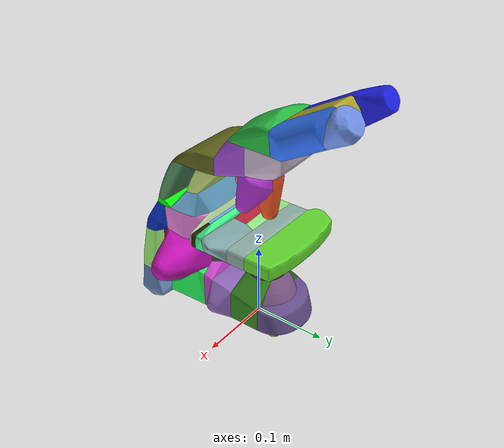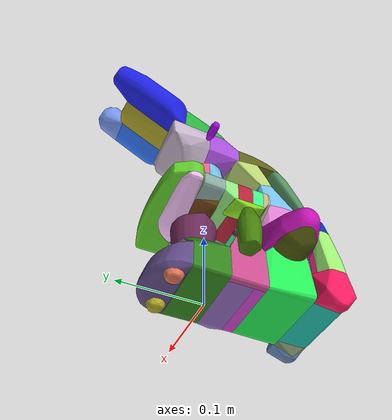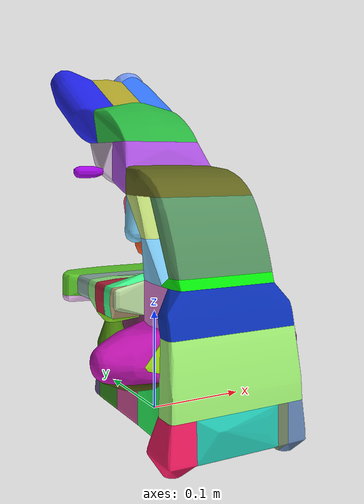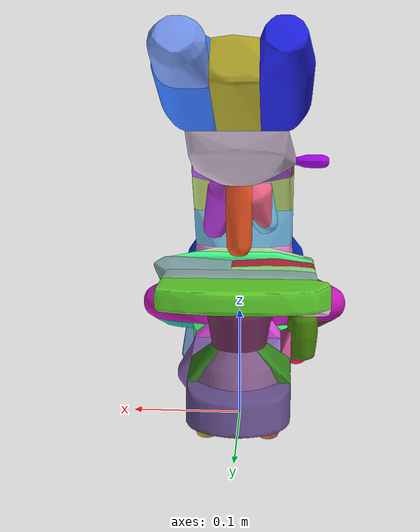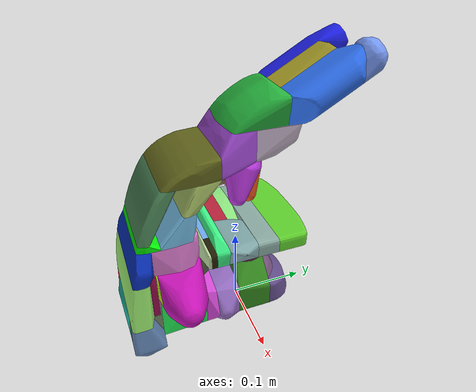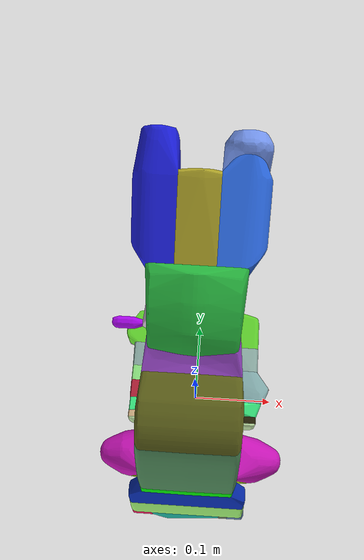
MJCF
<?xml version="1.0" ?>
<mujoco model="f81d863bec684b00a9b1ba4c2d844001">
  <asset>
    <texture type="2d" name="Scene_-_Root" file="Scene_-_Root.png"/>
    <material name="Scene_-_Root" texture="Scene_-_Root" specular="0.4000000000000001" shininess="0.001"/>
    <mesh file="f81d863bec684b00a9b1ba4c2d844001/f81d863bec684b00a9b1ba4c2d844001.obj" scale="0.006735388404175892 0.006735388404175892 0.006735388404175892"/>
    <mesh file="f81d863bec684b00a9b1ba4c2d844001/f81d863bec684b00a9b1ba4c2d844001_collision_0.obj" scale="0.006735388404175892 0.006735388404175892 0.006735388404175892"/>
    <mesh file="f81d863bec684b00a9b1ba4c2d844001/f81d863bec684b00a9b1ba4c2d844001_collision_1.obj" scale="0.006735388404175892 0.006735388404175892 0.006735388404175892"/>
    <mesh file="f81d863bec684b00a9b1ba4c2d844001/f81d863bec684b00a9b1ba4c2d844001_collision_2.obj" scale="0.006735388404175892 0.006735388404175892 0.006735388404175892"/>
    <mesh file="f81d863bec684b00a9b1ba4c2d844001/f81d863bec684b00a9b1ba4c2d844001_collision_3.obj" scale="0.006735388404175892 0.006735388404175892 0.006735388404175892"/>
    <mesh file="f81d863bec684b00a9b1ba4c2d844001/f81d863bec684b00a9b1ba4c2d844001_collision_4.obj" scale="0.006735388404175892 0.006735388404175892 0.006735388404175892"/>
    <mesh file="f81d863bec684b00a9b1ba4c2d844001/f81d863bec684b00a9b1ba4c2d844001_collision_5.obj" scale="0.006735388404175892 0.006735388404175892 0.006735388404175892"/>
    <mesh file="f81d863bec684b00a9b1ba4c2d844001/f81d863bec684b00a9b1ba4c2d844001_collision_6.obj" scale="0.006735388404175892 0.006735388404175892 0.006735388404175892"/>
    <mesh file="f81d863bec684b00a9b1ba4c2d844001/f81d863bec684b00a9b1ba4c2d844001_collision_7.obj" scale="0.006735388404175892 0.006735388404175892 0.006735388404175892"/>
    <mesh file="f81d863bec684b00a9b1ba4c2d844001/f81d863bec684b00a9b1ba4c2d844001_collision_8.obj" scale="0.006735388404175892 0.006735388404175892 0.006735388404175892"/>
    <mesh file="f81d863bec684b00a9b1ba4c2d844001/f81d863bec684b00a9b1ba4c2d844001_collision_9.obj" scale="0.006735388404175892 0.006735388404175892 0.006735388404175892"/>
    <mesh file="f81d863bec684b00a9b1ba4c2d844001/f81d863bec684b00a9b1ba4c2d844001_collision_10.obj" scale="0.006735388404175892 0.006735388404175892 0.006735388404175892"/>
    <mesh file="f81d863bec684b00a9b1ba4c2d844001/f81d863bec684b00a9b1ba4c2d844001_collision_11.obj" scale="0.006735388404175892 0.006735388404175892 0.006735388404175892"/>
    <mesh file="f81d863bec684b00a9b1ba4c2d844001/f81d863bec684b00a9b1ba4c2d844001_collision_12.obj" scale="0.006735388404175892 0.006735388404175892 0.006735388404175892"/>
    <mesh file="f81d863bec684b00a9b1ba4c2d844001/f81d863bec684b00a9b1ba4c2d844001_collision_13.obj" scale="0.006735388404175892 0.006735388404175892 0.006735388404175892"/>
    <mesh file="f81d863bec684b00a9b1ba4c2d844001/f81d863bec684b00a9b1ba4c2d844001_collision_14.obj" scale="0.006735388404175892 0.006735388404175892 0.006735388404175892"/>
    <mesh file="f81d863bec684b00a9b1ba4c2d844001/f81d863bec684b00a9b1ba4c2d844001_collision_15.obj" scale="0.006735388404175892 0.006735388404175892 0.006735388404175892"/>
    <mesh file="f81d863bec684b00a9b1ba4c2d844001/f81d863bec684b00a9b1ba4c2d844001_collision_16.obj" scale="0.006735388404175892 0.006735388404175892 0.006735388404175892"/>
    <mesh file="f81d863bec684b00a9b1ba4c2d844001/f81d863bec684b00a9b1ba4c2d844001_collision_17.obj" scale="0.006735388404175892 0.006735388404175892 0.006735388404175892"/>
    <mesh file="f81d863bec684b00a9b1ba4c2d844001/f81d863bec684b00a9b1ba4c2d844001_collision_18.obj" scale="0.006735388404175892 0.006735388404175892 0.006735388404175892"/>
    <mesh file="f81d863bec684b00a9b1ba4c2d844001/f81d863bec684b00a9b1ba4c2d844001_collision_19.obj" scale="0.006735388404175892 0.006735388404175892 0.006735388404175892"/>
    <mesh file="f81d863bec684b00a9b1ba4c2d844001/f81d863bec684b00a9b1ba4c2d844001_collision_20.obj" scale="0.006735388404175892 0.006735388404175892 0.006735388404175892"/>
    <mesh file="f81d863bec684b00a9b1ba4c2d844001/f81d863bec684b00a9b1ba4c2d844001_collision_21.obj" scale="0.006735388404175892 0.006735388404175892 0.006735388404175892"/>
    <mesh file="f81d863bec684b00a9b1ba4c2d844001/f81d863bec684b00a9b1ba4c2d844001_collision_22.obj" scale="0.006735388404175892 0.006735388404175892 0.006735388404175892"/>
    <mesh file="f81d863bec684b00a9b1ba4c2d844001/f81d863bec684b00a9b1ba4c2d844001_collision_23.obj" scale="0.006735388404175892 0.006735388404175892 0.006735388404175892"/>
    <mesh file="f81d863bec684b00a9b1ba4c2d844001/f81d863bec684b00a9b1ba4c2d844001_collision_24.obj" scale="0.006735388404175892 0.006735388404175892 0.006735388404175892"/>
    <mesh file="f81d863bec684b00a9b1ba4c2d844001/f81d863bec684b00a9b1ba4c2d844001_collision_25.obj" scale="0.006735388404175892 0.006735388404175892 0.006735388404175892"/>
    <mesh file="f81d863bec684b00a9b1ba4c2d844001/f81d863bec684b00a9b1ba4c2d844001_collision_26.obj" scale="0.006735388404175892 0.006735388404175892 0.006735388404175892"/>
    <mesh file="f81d863bec684b00a9b1ba4c2d844001/f81d863bec684b00a9b1ba4c2d844001_collision_27.obj" scale="0.006735388404175892 0.006735388404175892 0.006735388404175892"/>
    <mesh file="f81d863bec684b00a9b1ba4c2d844001/f81d863bec684b00a9b1ba4c2d844001_collision_28.obj" scale="0.006735388404175892 0.006735388404175892 0.006735388404175892"/>
    <mesh file="f81d863bec684b00a9b1ba4c2d844001/f81d863bec684b00a9b1ba4c2d844001_collision_29.obj" scale="0.006735388404175892 0.006735388404175892 0.006735388404175892"/>
    <mesh file="f81d863bec684b00a9b1ba4c2d844001/f81d863bec684b00a9b1ba4c2d844001_collision_30.obj" scale="0.006735388404175892 0.006735388404175892 0.006735388404175892"/>
    <mesh file="f81d863bec684b00a9b1ba4c2d844001/f81d863bec684b00a9b1ba4c2d844001_collision_31.obj" scale="0.006735388404175892 0.006735388404175892 0.006735388404175892"/>
    <mesh file="f81d863bec684b00a9b1ba4c2d844001/f81d863bec684b00a9b1ba4c2d844001_collision_32.obj" scale="0.006735388404175892 0.006735388404175892 0.006735388404175892"/>
    <mesh file="f81d863bec684b00a9b1ba4c2d844001/f81d863bec684b00a9b1ba4c2d844001_collision_33.obj" scale="0.006735388404175892 0.006735388404175892 0.006735388404175892"/>
    <mesh file="f81d863bec684b00a9b1ba4c2d844001/f81d863bec684b00a9b1ba4c2d844001_collision_34.obj" scale="0.006735388404175892 0.006735388404175892 0.006735388404175892"/>
    <mesh file="f81d863bec684b00a9b1ba4c2d844001/f81d863bec684b00a9b1ba4c2d844001_collision_35.obj" scale="0.006735388404175892 0.006735388404175892 0.006735388404175892"/>
    <mesh file="f81d863bec684b00a9b1ba4c2d844001/f81d863bec684b00a9b1ba4c2d844001_collision_36.obj" scale="0.006735388404175892 0.006735388404175892 0.006735388404175892"/>
    <mesh file="f81d863bec684b00a9b1ba4c2d844001/f81d863bec684b00a9b1ba4c2d844001_collision_37.obj" scale="0.006735388404175892 0.006735388404175892 0.006735388404175892"/>
    <mesh file="f81d863bec684b00a9b1ba4c2d844001/f81d863bec684b00a9b1ba4c2d844001_collision_38.obj" scale="0.006735388404175892 0.006735388404175892 0.006735388404175892"/>
    <mesh file="f81d863bec684b00a9b1ba4c2d844001/f81d863bec684b00a9b1ba4c2d844001_collision_39.obj" scale="0.006735388404175892 0.006735388404175892 0.006735388404175892"/>
    <mesh file="f81d863bec684b00a9b1ba4c2d844001/f81d863bec684b00a9b1ba4c2d844001_collision_40.obj" scale="0.006735388404175892 0.006735388404175892 0.006735388404175892"/>
    <mesh file="f81d863bec684b00a9b1ba4c2d844001/f81d863bec684b00a9b1ba4c2d844001_collision_41.obj" scale="0.006735388404175892 0.006735388404175892 0.006735388404175892"/>
    <mesh file="f81d863bec684b00a9b1ba4c2d844001/f81d863bec684b00a9b1ba4c2d844001_collision_42.obj" scale="0.006735388404175892 0.006735388404175892 0.006735388404175892"/>
    <mesh file="f81d863bec684b00a9b1ba4c2d844001/f81d863bec684b00a9b1ba4c2d844001_collision_43.obj" scale="0.006735388404175892 0.006735388404175892 0.006735388404175892"/>
    <mesh file="f81d863bec684b00a9b1ba4c2d844001/f81d863bec684b00a9b1ba4c2d844001_collision_44.obj" scale="0.006735388404175892 0.006735388404175892 0.006735388404175892"/>
    <mesh file="f81d863bec684b00a9b1ba4c2d844001/f81d863bec684b00a9b1ba4c2d844001_collision_45.obj" scale="0.006735388404175892 0.006735388404175892 0.006735388404175892"/>
    <mesh file="f81d863bec684b00a9b1ba4c2d844001/f81d863bec684b00a9b1ba4c2d844001_collision_46.obj" scale="0.006735388404175892 0.006735388404175892 0.006735388404175892"/>
    <mesh file="f81d863bec684b00a9b1ba4c2d844001/f81d863bec684b00a9b1ba4c2d844001_collision_47.obj" scale="0.006735388404175892 0.006735388404175892 0.006735388404175892"/>
    <mesh file="f81d863bec684b00a9b1ba4c2d844001/f81d863bec684b00a9b1ba4c2d844001_collision_48.obj" scale="0.006735388404175892 0.006735388404175892 0.006735388404175892"/>
    <mesh file="f81d863bec684b00a9b1ba4c2d844001/f81d863bec684b00a9b1ba4c2d844001_collision_49.obj" scale="0.006735388404175892 0.006735388404175892 0.006735388404175892"/>
    <mesh file="f81d863bec684b00a9b1ba4c2d844001/f81d863bec684b00a9b1ba4c2d844001_collision_50.obj" scale="0.006735388404175892 0.006735388404175892 0.006735388404175892"/>
    <mesh file="f81d863bec684b00a9b1ba4c2d844001/f81d863bec684b00a9b1ba4c2d844001_collision_51.obj" scale="0.006735388404175892 0.006735388404175892 0.006735388404175892"/>
    <mesh file="f81d863bec684b00a9b1ba4c2d844001/f81d863bec684b00a9b1ba4c2d844001_collision_52.obj" scale="0.006735388404175892 0.006735388404175892 0.006735388404175892"/>
    <mesh file="f81d863bec684b00a9b1ba4c2d844001/f81d863bec684b00a9b1ba4c2d844001_collision_53.obj" scale="0.006735388404175892 0.006735388404175892 0.006735388404175892"/>
    <mesh file="f81d863bec684b00a9b1ba4c2d844001/f81d863bec684b00a9b1ba4c2d844001_collision_54.obj" scale="0.006735388404175892 0.006735388404175892 0.006735388404175892"/>
    <mesh file="f81d863bec684b00a9b1ba4c2d844001/f81d863bec684b00a9b1ba4c2d844001_collision_55.obj" scale="0.006735388404175892 0.006735388404175892 0.006735388404175892"/>
    <mesh file="f81d863bec684b00a9b1ba4c2d844001/f81d863bec684b00a9b1ba4c2d844001_collision_56.obj" scale="0.006735388404175892 0.006735388404175892 0.006735388404175892"/>
    <mesh file="f81d863bec684b00a9b1ba4c2d844001/f81d863bec684b00a9b1ba4c2d844001_collision_57.obj" scale="0.006735388404175892 0.006735388404175892 0.006735388404175892"/>
    <mesh file="f81d863bec684b00a9b1ba4c2d844001/f81d863bec684b00a9b1ba4c2d844001_collision_58.obj" scale="0.006735388404175892 0.006735388404175892 0.006735388404175892"/>
    <mesh file="f81d863bec684b00a9b1ba4c2d844001/f81d863bec684b00a9b1ba4c2d844001_collision_59.obj" scale="0.006735388404175892 0.006735388404175892 0.006735388404175892"/>
    <mesh file="f81d863bec684b00a9b1ba4c2d844001/f81d863bec684b00a9b1ba4c2d844001_collision_60.obj" scale="0.006735388404175892 0.006735388404175892 0.006735388404175892"/>
  </asset>
  <worldbody>
    <body name="f81d863bec684b00a9b1ba4c2d844001">
      <inertial pos="0 0 0.1750" mass="0.02" diaginertia="0.000367 0.000274 0.000233"/>
      <geom material="Scene_-_Root" mesh="f81d863bec684b00a9b1ba4c2d844001" class="visual"/>
      <geom mesh="f81d863bec684b00a9b1ba4c2d844001_collision_0" rgba="0.15869374899008404 0.7215135021161718 0.2511292263974142 1" class="collision"/>
      <geom mesh="f81d863bec684b00a9b1ba4c2d844001_collision_1" rgba="0.6750899940933288 0.026323518454755113 0.9333233329308993 1" class="collision"/>
      <geom mesh="f81d863bec684b00a9b1ba4c2d844001_collision_2" rgba="0.6829167860393182 0.54896110153829 0.477853784047816 1" class="collision"/>
      <geom mesh="f81d863bec684b00a9b1ba4c2d844001_collision_3" rgba="0.3938520396261428 0.2355558494890826 0.06294760848108638 1" class="collision"/>
      <geom mesh="f81d863bec684b00a9b1ba4c2d844001_collision_4" rgba="0.037902964915381476 0.19330066843563443 0.7435812014819403 1" class="collision"/>
      <geom mesh="f81d863bec684b00a9b1ba4c2d844001_collision_5" rgba="0.7341039496137518 0.22525236200752696 0.8750463716391378 1" class="collision"/>
      <geom mesh="f81d863bec684b00a9b1ba4c2d844001_collision_6" rgba="0.7506061571355152 0.858852183548332 0.46248341496325507 1" class="collision"/>
      <geom mesh="f81d863bec684b00a9b1ba4c2d844001_collision_7" rgba="0.9041547021377128 0.5169685029480131 0.8503673598119766 1" class="collision"/>
      <geom mesh="f81d863bec684b00a9b1ba4c2d844001_collision_8" rgba="0.3309661197505891 0.5738604277850053 0.3773521287690329 1" class="collision"/>
      <geom mesh="f81d863bec684b00a9b1ba4c2d844001_collision_9" rgba="0.8023059205714603 0.7321293690784032 0.8229838620084674 1" class="collision"/>
      <geom mesh="f81d863bec684b00a9b1ba4c2d844001_collision_10" rgba="0.12149256587704893 0.13325629394394967 0.9182266745327247 1" class="collision"/>
      <geom mesh="f81d863bec684b00a9b1ba4c2d844001_collision_11" rgba="0.3881538515740648 0.40188976854333536 0.11166979338848937 1" class="collision"/>
      <geom mesh="f81d863bec684b00a9b1ba4c2d844001_collision_12" rgba="0.5527389650617526 0.6810020872643795 0.6488295107278812 1" class="collision"/>
      <geom mesh="f81d863bec684b00a9b1ba4c2d844001_collision_13" rgba="0.3883160972886802 0.8441070630380517 0.18062209891693048 1" class="collision"/>
      <geom mesh="f81d863bec684b00a9b1ba4c2d844001_collision_14" rgba="0.9644611817680415 0.7610183938360452 0.9837781067983353 1" class="collision"/>
      <geom mesh="f81d863bec684b00a9b1ba4c2d844001_collision_15" rgba="0.47664905970234206 0.773321386128948 0.9358334189590555 1" class="collision"/>
      <geom mesh="f81d863bec684b00a9b1ba4c2d844001_collision_16" rgba="0.6751933858608159 0.3205571675737915 0.8810917394842067 1" class="collision"/>
      <geom mesh="f81d863bec684b00a9b1ba4c2d844001_collision_17" rgba="0.15189044881620728 0.9614705784675641 0.35285984534744186 1" class="collision"/>
      <geom mesh="f81d863bec684b00a9b1ba4c2d844001_collision_18" rgba="0.9943731604773216 0.10586744099091039 0.3940429055240806 1" class="collision"/>
      <geom mesh="f81d863bec684b00a9b1ba4c2d844001_collision_19" rgba="0.43648798952292034 0.1732554320590204 0.354853716415346 1" class="collision"/>
      <geom mesh="f81d863bec684b00a9b1ba4c2d844001_collision_20" rgba="0.5121795804193064 0.6675009594018118 0.6706571833538184 1" class="collision"/>
      <geom mesh="f81d863bec684b00a9b1ba4c2d844001_collision_21" rgba="0.6943047970765163 0.6497309116924602 0.16072693330614363 1" class="collision"/>
      <geom mesh="f81d863bec684b00a9b1ba4c2d844001_collision_22" rgba="0.7491470328889971 0.4333541196838345 0.6445106763489747 1" class="collision"/>
      <geom mesh="f81d863bec684b00a9b1ba4c2d844001_collision_23" rgba="0.251075000804184 0.9991546293886497 0.5501746248463075 1" class="collision"/>
      <geom mesh="f81d863bec684b00a9b1ba4c2d844001_collision_24" rgba="0.20768197282028056 0.5401730048290327 0.11979201072116252 1" class="collision"/>
      <geom mesh="f81d863bec684b00a9b1ba4c2d844001_collision_25" rgba="0.6791931080847013 0.9153323866078718 0.06618136856161705 1" class="collision"/>
      <geom mesh="f81d863bec684b00a9b1ba4c2d844001_collision_26" rgba="0.025806475792066297 0.976312223749931 0.03765053452326106 1" class="collision"/>
      <geom mesh="f81d863bec684b00a9b1ba4c2d844001_collision_27" rgba="0.7947885395358815 0.07825749092050216 0.7251311706943379 1" class="collision"/>
      <geom mesh="f81d863bec684b00a9b1ba4c2d844001_collision_28" rgba="0.6396306435599259 0.9655795288660557 0.46100154158808593 1" class="collision"/>
      <geom mesh="f81d863bec684b00a9b1ba4c2d844001_collision_29" rgba="0.2801093215270274 0.5099499104162553 0.03940919363983719 1" class="collision"/>
      <geom mesh="f81d863bec684b00a9b1ba4c2d844001_collision_30" rgba="0.37337674126453435 0.7914599661163862 0.4821797747372938 1" class="collision"/>
      <geom mesh="f81d863bec684b00a9b1ba4c2d844001_collision_31" rgba="0.8312185741321108 0.7001446150663577 0.5268643811342519 1" class="collision"/>
      <geom mesh="f81d863bec684b00a9b1ba4c2d844001_collision_32" rgba="0.6106759083499845 0.051369669593454015 0.3180336867766993 1" class="collision"/>
      <geom mesh="f81d863bec684b00a9b1ba4c2d844001_collision_33" rgba="0.9690765924163743 0.3501381256633428 0.14027547313801014 1" class="collision"/>
      <geom mesh="f81d863bec684b00a9b1ba4c2d844001_collision_34" rgba="0.7392331958693545 0.8668340940918973 0.6340360987536938 1" class="collision"/>
      <geom mesh="f81d863bec684b00a9b1ba4c2d844001_collision_35" rgba="0.5168199492804862 0.8511494785530825 0.11789708073040683 1" class="collision"/>
      <geom mesh="f81d863bec684b00a9b1ba4c2d844001_collision_36" rgba="0.5730458262016331 0.9310754192455242 0.517581937192916 1" class="collision"/>
      <geom mesh="f81d863bec684b00a9b1ba4c2d844001_collision_37" rgba="0.6953558664697936 0.6655697232924593 0.15312713944445167 1" class="collision"/>
      <geom mesh="f81d863bec684b00a9b1ba4c2d844001_collision_38" rgba="0.8147995161577779 0.3100866623261498 0.5758012982113283 1" class="collision"/>
      <geom mesh="f81d863bec684b00a9b1ba4c2d844001_collision_39" rgba="0.45804307292748303 0.6903341852891353 0.9775249667857329 1" class="collision"/>
      <geom mesh="f81d863bec684b00a9b1ba4c2d844001_collision_40" rgba="0.4659339084922093 0.6007818648128849 0.9564664145862045 1" class="collision"/>
      <geom mesh="f81d863bec684b00a9b1ba4c2d844001_collision_41" rgba="0.7298239443056149 0.13432666476125354 0.22931074639650462 1" class="collision"/>
      <geom mesh="f81d863bec684b00a9b1ba4c2d844001_collision_42" rgba="0.8358243042350384 0.2845391415203392 0.8395228300055427 1" class="collision"/>
      <geom mesh="f81d863bec684b00a9b1ba4c2d844001_collision_43" rgba="0.5150127124629881 0.3568634190494995 0.5416952165638429 1" class="collision"/>
      <geom mesh="f81d863bec684b00a9b1ba4c2d844001_collision_44" rgba="0.1977954468432076 0.46676150612755496 0.987442273032327 1" class="collision"/>
      <geom mesh="f81d863bec684b00a9b1ba4c2d844001_collision_45" rgba="0.5749342404960432 0.42338497289659216 0.751135089976061 1" class="collision"/>
      <geom mesh="f81d863bec684b00a9b1ba4c2d844001_collision_46" rgba="0.4782866823606312 0.7955931694336823 0.94983897303793 1" class="collision"/>
      <geom mesh="f81d863bec684b00a9b1ba4c2d844001_collision_47" rgba="0.09830652511205729 0.7195521561318671 0.647928921121514 1" class="collision"/>
      <geom mesh="f81d863bec684b00a9b1ba4c2d844001_collision_48" rgba="0.9529854586584308 0.39279806545634 0.5360174056695779 1" class="collision"/>
      <geom mesh="f81d863bec684b00a9b1ba4c2d844001_collision_49" rgba="0.3093499183140488 0.3536833024691671 0.24977989579239124 1" class="collision"/>
      <geom mesh="f81d863bec684b00a9b1ba4c2d844001_collision_50" rgba="0.6153690725042307 0.7786173424984342 0.4460753251872076 1" class="collision"/>
      <geom mesh="f81d863bec684b00a9b1ba4c2d844001_collision_51" rgba="0.1326696609138185 0.7736568499351967 0.6961090853115965 1" class="collision"/>
      <geom mesh="f81d863bec684b00a9b1ba4c2d844001_collision_52" rgba="0.24972288968665202 0.6155524063044774 0.04954074832041144 1" class="collision"/>
      <geom mesh="f81d863bec684b00a9b1ba4c2d844001_collision_53" rgba="0.563450530386449 0.398487638019279 0.2965793488320415 1" class="collision"/>
      <geom mesh="f81d863bec684b00a9b1ba4c2d844001_collision_54" rgba="0.39518955031039715 0.5306118763398694 0.7180192023093288 1" class="collision"/>
      <geom mesh="f81d863bec684b00a9b1ba4c2d844001_collision_55" rgba="0.43670473592130254 0.5093509696933003 0.38195054155118713 1" class="collision"/>
      <geom mesh="f81d863bec684b00a9b1ba4c2d844001_collision_56" rgba="0.14177002736248645 0.12695979334879037 0.027537693838714294 1" class="collision"/>
      <geom mesh="f81d863bec684b00a9b1ba4c2d844001_collision_57" rgba="0.8906471416124346 0.45839559984324285 0.34193123820551075 1" class="collision"/>
      <geom mesh="f81d863bec684b00a9b1ba4c2d844001_collision_58" rgba="0.3146567728530404 0.34596028824104386 0.047267030619514094 1" class="collision"/>
      <geom mesh="f81d863bec684b00a9b1ba4c2d844001_collision_59" rgba="0.41302985163057193 0.14518472485774514 0.3819833449863661 1" class="collision"/>
      <geom mesh="f81d863bec684b00a9b1ba4c2d844001_collision_60" rgba="0.38730338731979885 0.30295872119242784 0.5409240243945562 1" class="collision"/>
      <site class="grasppoint" pos="0 0 0.2800"/>
      <site class="grasppoint" pos="0 0 0.3062"/>
      <site class="grasppoint" pos="0 0 0.3325"/>
    </body>
  </worldbody>
  <compiler boundmass="0.015" boundinertia="1e-05" angle="radian"/>
  <default>
    <default class="visual">
      <geom group="2" type="mesh" contype="0" conaffinity="0" density="50"/>
    </default>
    <default class="collision">
      <geom type="mesh" density="50" friction="1.5 0.1 0.1" solimp="0.9 0.95 0.001" solref="0.02 1"/>
    </default>
    <default class="grasppoint">
      <site type="sphere" size="0.005" group="4" rgba="0 0 1 1"/>
    </default>
  </default>
</mujoco>
